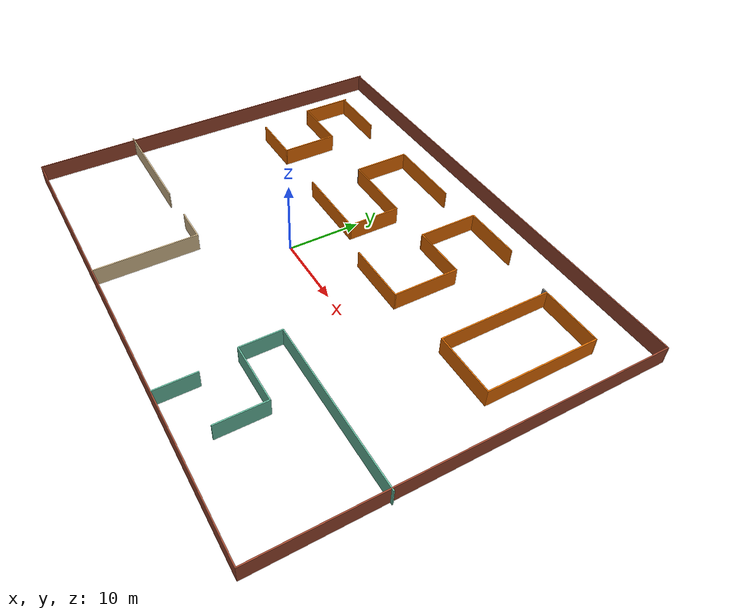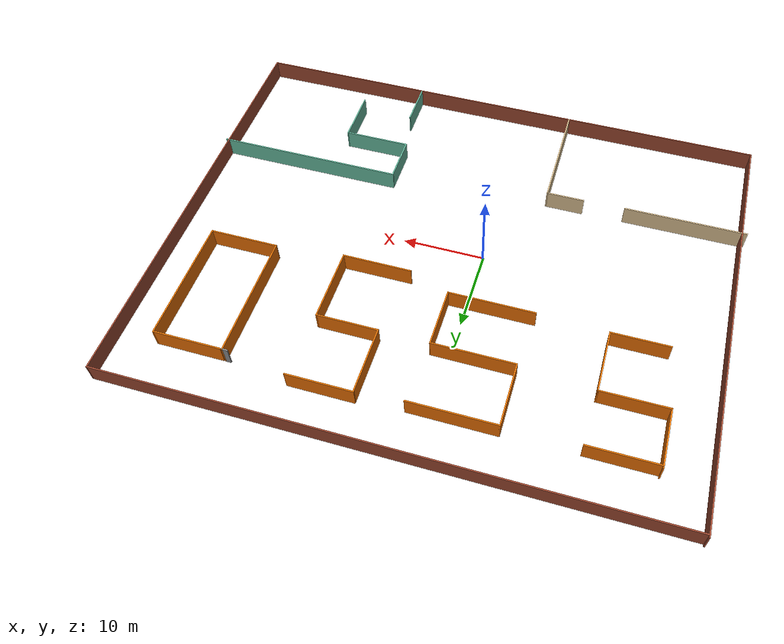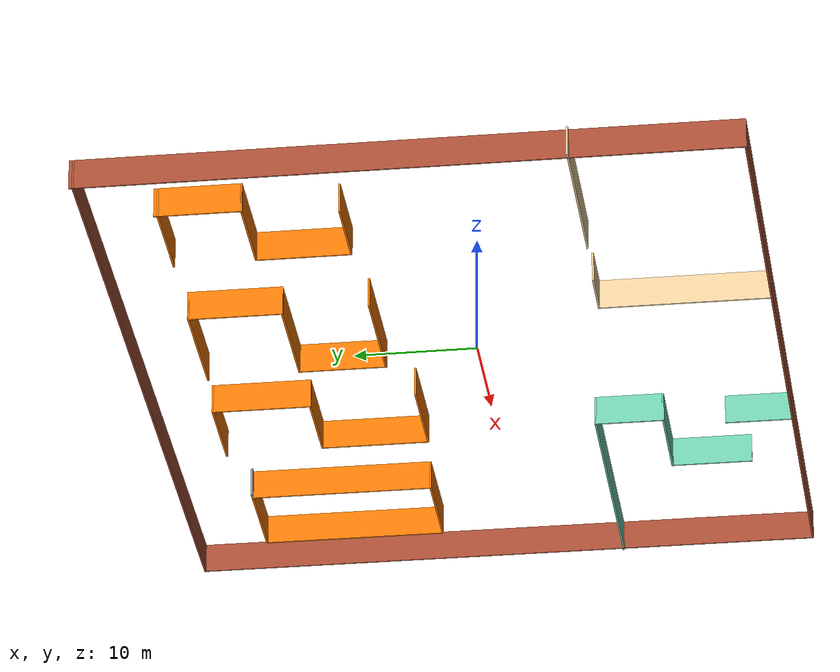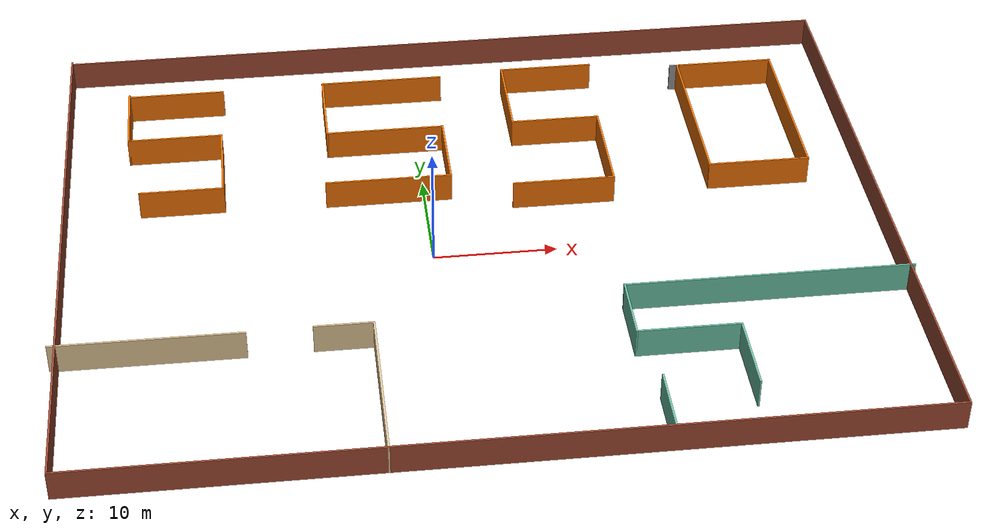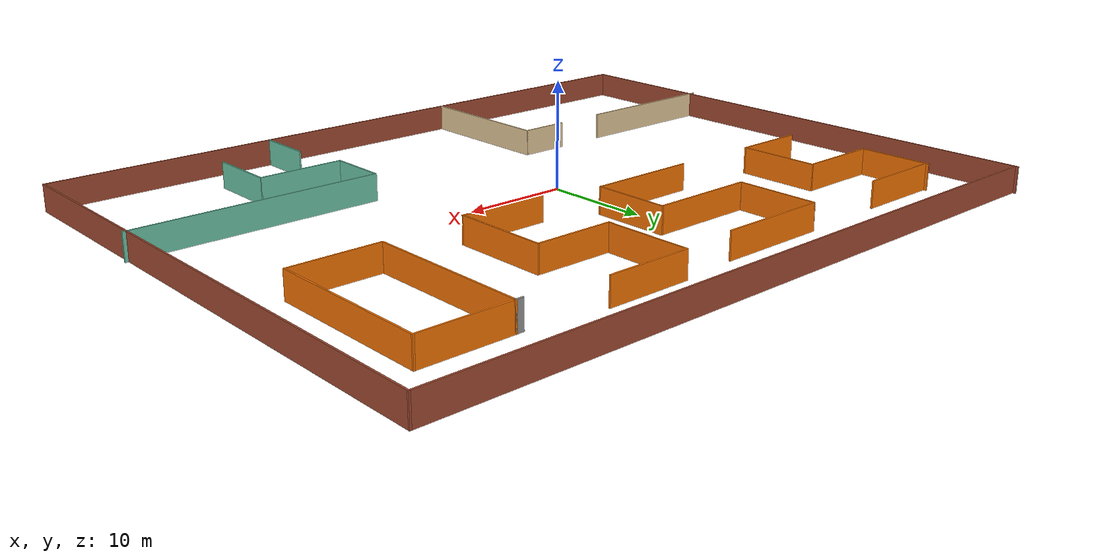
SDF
<?xml version='1.0'?>
<sdf version='1.7'>
  <model name='5550room1'>
    <pose>3.53861 1.95198 0 0 -0 0</pose>
    <link name='Wall_10'>
      <collision name='Wall_10_Collision'>
        <geometry>
          <box>
            <size>8 0.15 2.5</size>
          </box>
        </geometry>
        <pose>0 0 1.25 0 -0 0</pose>
      </collision>
      <visual name='Wall_10_Visual'>
        <pose>0 0 1.25 0 -0 0</pose>
        <geometry>
          <box>
            <size>8 0.15 2.5</size>
          </box>
        </geometry>
        <material>
          <script>
            <uri>file://media/materials/scripts/gazebo.material</uri>
            <name>Gazebo/Grey</name>
          </script>
          <ambient>0.996078 0.47451 0.0196078 1</ambient>
        </material>
        <meta>
          <layer>0</layer>
        </meta>
      </visual>
      <pose>-24.1054 13.6175 0 0 -0 0</pose>
    </link>
    <link name='Wall_11'>
      <collision name='Wall_11_Collision'>
        <geometry>
          <box>
            <size>7.75 0.15 2.5</size>
          </box>
        </geometry>
        <pose>0 0 1.25 0 -0 0</pose>
      </collision>
      <visual name='Wall_11_Visual'>
        <pose>0 0 1.25 0 -0 0</pose>
        <geometry>
          <box>
            <size>7.75 0.15 2.5</size>
          </box>
        </geometry>
        <material>
          <script>
            <uri>file://media/materials/scripts/gazebo.material</uri>
            <name>Gazebo/Grey</name>
          </script>
          <ambient>0.996078 0.47451 0.0196078 1</ambient>
        </material>
        <meta>
          <layer>0</layer>
        </meta>
      </visual>
      <pose>-20.1804 9.8175 0 0 -0 -1.5708</pose>
    </link>
    <link name='Wall_12'>
      <collision name='Wall_12_Collision'>
        <geometry>
          <box>
            <size>7 0.15 2.5</size>
          </box>
        </geometry>
        <pose>0 0 1.25 0 -0 0</pose>
      </collision>
      <visual name='Wall_12_Visual'>
        <pose>0 0 1.25 0 -0 0</pose>
        <geometry>
          <box>
            <size>7 0.15 2.5</size>
          </box>
        </geometry>
        <material>
          <script>
            <uri>file://media/materials/scripts/gazebo.material</uri>
            <name>Gazebo/Grey</name>
          </script>
          <ambient>0.996078 0.47451 0.0196078 1</ambient>
        </material>
        <meta>
          <layer>0</layer>
        </meta>
      </visual>
      <pose>-23.6054 6.0175 0 0 -0 3.14159</pose>
    </link>
    <link name='Wall_14'>
      <collision name='Wall_14_Collision'>
        <geometry>
          <box>
            <size>10.5 0.15 2.5</size>
          </box>
        </geometry>
        <pose>0 0 1.25 0 -0 0</pose>
      </collision>
      <visual name='Wall_14_Visual'>
        <pose>0 0 1.25 0 -0 0</pose>
        <geometry>
          <box>
            <size>10.5 0.15 2.5</size>
          </box>
        </geometry>
        <material>
          <script>
            <uri>file://media/materials/scripts/gazebo.material</uri>
            <name>Gazebo/Grey</name>
          </script>
          <ambient>0.996078 0.47451 0.0196078 1</ambient>
        </material>
        <meta>
          <layer>0</layer>
        </meta>
      </visual>
      <pose>-6.02478 20.4675 0 0 -0 0</pose>
    </link>
    <link name='Wall_17'>
      <collision name='Wall_17_Collision'>
        <geometry>
          <box>
            <size>7.75 0.15 2.5</size>
          </box>
        </geometry>
        <pose>0 0 1.25 0 -0 0</pose>
      </collision>
      <visual name='Wall_17_Visual'>
        <pose>0 0 1.25 0 -0 0</pose>
        <geometry>
          <box>
            <size>7.75 0.15 2.5</size>
          </box>
        </geometry>
        <material>
          <script>
            <uri>file://media/materials/scripts/gazebo.material</uri>
            <name>Gazebo/Grey</name>
          </script>
          <ambient>0.996078 0.47451 0.0196078 1</ambient>
        </material>
        <meta>
          <layer>0</layer>
        </meta>
      </visual>
      <pose>-11.1998 16.6675 0 0 -0 -1.5708</pose>
    </link>
    <link name='Wall_18'>
      <collision name='Wall_18_Collision'>
        <geometry>
          <box>
            <size>0.16 0.15 2.5</size>
          </box>
        </geometry>
        <pose>0 0 1.25 0 -0 0</pose>
      </collision>
      <visual name='Wall_18_Visual'>
        <pose>0 0 1.25 0 -0 0</pose>
        <geometry>
          <box>
            <size>0.16 0.15 2.5</size>
          </box>
        </geometry>
        <material>
          <script>
            <uri>file://media/materials/scripts/gazebo.material</uri>
            <name>Gazebo/Grey</name>
          </script>
          <ambient>1 1 1 1</ambient>
        </material>
        <meta>
          <layer>0</layer>
        </meta>
      </visual>
      <pose>-11.1948 12.8675 0 0 -0 0</pose>
    </link>
    <link name='Wall_19'>
      <collision name='Wall_19_Collision'>
        <geometry>
          <box>
            <size>10 0.15 2.5</size>
          </box>
        </geometry>
        <pose>0 0 1.25 0 -0 0</pose>
      </collision>
      <visual name='Wall_19_Visual'>
        <pose>0 0 1.25 0 -0 0</pose>
        <geometry>
          <box>
            <size>10 0.15 2.5</size>
          </box>
        </geometry>
        <material>
          <script>
            <uri>file://media/materials/scripts/gazebo.material</uri>
            <name>Gazebo/Grey</name>
          </script>
          <ambient>0.996078 0.47451 0.0196078 1</ambient>
        </material>
        <meta>
          <layer>0</layer>
        </meta>
      </visual>
      <pose>-6.26478 12.8675 0 0 -0 0</pose>
    </link>
    <link name='Wall_2'>
      <collision name='Wall_2_Collision'>
        <geometry>
          <box>
            <size>52.75 0.15 2.5</size>
          </box>
        </geometry>
        <pose>0 0 1.25 0 -0 0</pose>
      </collision>
      <visual name='Wall_2_Visual'>
        <pose>0 0 1.25 0 -0 0</pose>
        <geometry>
          <box>
            <size>52.75 0.15 2.5</size>
          </box>
        </geometry>
        <material>
          <script>
            <uri>file://media/materials/scripts/gazebo.material</uri>
            <name>Gazebo/Bricks</name>
          </script>
          <ambient>1 1 1 1</ambient>
        </material>
        <meta>
          <layer>0</layer>
        </meta>
      </visual>
      <pose>-33.1775 0.001208 0 0 -0 -1.5708</pose>
    </link>
    <link name='Wall_20'>
      <collision name='Wall_20_Collision'>
        <geometry>
          <box>
            <size>7.25 0.15 2.5</size>
          </box>
        </geometry>
        <pose>0 0 1.25 0 -0 0</pose>
      </collision>
      <visual name='Wall_20_Visual'>
        <pose>0 0 1.25 0 -0 0</pose>
        <geometry>
          <box>
            <size>7.25 0.15 2.5</size>
          </box>
        </geometry>
        <material>
          <script>
            <uri>file://media/materials/scripts/gazebo.material</uri>
            <name>Gazebo/Grey</name>
          </script>
          <ambient>0.996078 0.47451 0.0196078 1</ambient>
        </material>
        <meta>
          <layer>0</layer>
        </meta>
      </visual>
      <pose>-1.33978 9.3175 0 0 -0 -1.5708</pose>
    </link>
    <link name='Wall_21'>
      <collision name='Wall_21_Collision'>
        <geometry>
          <box>
            <size>10.5 0.15 2.5</size>
          </box>
        </geometry>
        <pose>0 0 1.25 0 -0 0</pose>
      </collision>
      <visual name='Wall_21_Visual'>
        <pose>0 0 1.25 0 -0 0</pose>
        <geometry>
          <box>
            <size>10.5 0.15 2.5</size>
          </box>
        </geometry>
        <material>
          <script>
            <uri>file://media/materials/scripts/gazebo.material</uri>
            <name>Gazebo/Grey</name>
          </script>
          <ambient>0.996078 0.47451 0.0196078 1</ambient>
        </material>
        <meta>
          <layer>0</layer>
        </meta>
      </visual>
      <pose>-6.51478 5.7675 0 0 -0 3.14159</pose>
    </link>
    <link name='Wall_23'>
      <collision name='Wall_23_Collision'>
        <geometry>
          <box>
            <size>8 0.15 2.5</size>
          </box>
        </geometry>
        <pose>0 0 1.25 0 -0 0</pose>
      </collision>
      <visual name='Wall_23_Visual'>
        <pose>0 0 1.25 0 -0 0</pose>
        <geometry>
          <box>
            <size>8 0.15 2.5</size>
          </box>
        </geometry>
        <material>
          <script>
            <uri>file://media/materials/scripts/gazebo.material</uri>
            <name>Gazebo/Grey</name>
          </script>
          <ambient>0.996078 0.47451 0.0196078 1</ambient>
        </material>
        <meta>
          <layer>0</layer>
        </meta>
      </visual>
      <pose>8.63609 20.9625 0 0 -0 3.14159</pose>
    </link>
    <link name='Wall_24'>
      <collision name='Wall_24_Collision'>
        <geometry>
          <box>
            <size>8.25 0.15 2.5</size>
          </box>
        </geometry>
        <pose>0 0 1.25 0 -0 0</pose>
      </collision>
      <visual name='Wall_24_Visual'>
        <pose>0 0 1.25 0 -0 0</pose>
        <geometry>
          <box>
            <size>8.25 0.15 2.5</size>
          </box>
        </geometry>
        <material>
          <script>
            <uri>file://media/materials/scripts/gazebo.material</uri>
            <name>Gazebo/Grey</name>
          </script>
          <ambient>0.996078 0.47451 0.0196078 1</ambient>
        </material>
        <meta>
          <layer>0</layer>
        </meta>
      </visual>
      <pose>4.71109 16.9125 0 0 -0 -1.5708</pose>
    </link>
    <link name='Wall_25'>
      <collision name='Wall_25_Collision'>
        <geometry>
          <box>
            <size>7.5 0.15 2.5</size>
          </box>
        </geometry>
        <pose>0 0 1.25 0 -0 0</pose>
      </collision>
      <visual name='Wall_25_Visual'>
        <pose>0 0 1.25 0 -0 0</pose>
        <geometry>
          <box>
            <size>7.5 0.15 2.5</size>
          </box>
        </geometry>
        <material>
          <script>
            <uri>file://media/materials/scripts/gazebo.material</uri>
            <name>Gazebo/Grey</name>
          </script>
          <ambient>0.996078 0.47451 0.0196078 1</ambient>
        </material>
        <meta>
          <layer>0</layer>
        </meta>
      </visual>
      <pose>8.38609 12.8625 0 0 -0 0</pose>
    </link>
    <link name='Wall_26'>
      <collision name='Wall_26_Collision'>
        <geometry>
          <box>
            <size>9 0.15 2.5</size>
          </box>
        </geometry>
        <pose>0 0 1.25 0 -0 0</pose>
      </collision>
      <visual name='Wall_26_Visual'>
        <pose>0 0 1.25 0 -0 0</pose>
        <geometry>
          <box>
            <size>9 0.15 2.5</size>
          </box>
        </geometry>
        <material>
          <script>
            <uri>file://media/materials/scripts/gazebo.material</uri>
            <name>Gazebo/Grey</name>
          </script>
          <ambient>0.996078 0.47451 0.0196078 1</ambient>
        </material>
        <meta>
          <layer>0</layer>
        </meta>
      </visual>
      <pose>12.0611 8.43752 0 0 -0 -1.5708</pose>
    </link>
    <link name='Wall_27'>
      <collision name='Wall_27_Collision'>
        <geometry>
          <box>
            <size>8.5 0.15 2.5</size>
          </box>
        </geometry>
        <pose>0 0 1.25 0 -0 0</pose>
      </collision>
      <visual name='Wall_27_Visual'>
        <pose>0 0 1.25 0 -0 0</pose>
        <geometry>
          <box>
            <size>8.5 0.15 2.5</size>
          </box>
        </geometry>
        <material>
          <script>
            <uri>file://media/materials/scripts/gazebo.material</uri>
            <name>Gazebo/Grey</name>
          </script>
          <ambient>0.996078 0.47451 0.0196078 1</ambient>
        </material>
        <meta>
          <layer>0</layer>
        </meta>
      </visual>
      <pose>7.88609 4.01252 0 0 -0 3.14159</pose>
    </link>
    <link name='Wall_29'>
      <collision name='Wall_29_Collision'>
        <geometry>
          <box>
            <size>0.75 0.15 2.5</size>
          </box>
        </geometry>
        <pose>0 0 1.25 0 -0 0</pose>
      </collision>
      <visual name='Wall_29_Visual'>
        <pose>0 0 1.25 0 -0 0</pose>
        <geometry>
          <box>
            <size>0.75 0.15 2.5</size>
          </box>
        </geometry>
        <material>
          <script>
            <uri>file://media/materials/scripts/gazebo.material</uri>
            <name>Gazebo/Grey</name>
          </script>
          <ambient>1 1 1 1</ambient>
        </material>
        <meta>
          <layer>0</layer>
        </meta>
      </visual>
      <pose>20.0388 19.9725 0 0 -0 0</pose>
    </link>
    <link name='Wall_3'>
      <collision name='Wall_3_Collision'>
        <geometry>
          <box>
            <size>66.75 0.15 2.5</size>
          </box>
        </geometry>
        <pose>0 0 1.25 0 -0 0</pose>
      </collision>
      <visual name='Wall_3_Visual'>
        <pose>0 0 1.25 0 -0 0</pose>
        <geometry>
          <box>
            <size>66.75 0.15 2.5</size>
          </box>
        </geometry>
        <material>
          <script>
            <uri>file://media/materials/scripts/gazebo.material</uri>
            <name>Gazebo/Bricks</name>
          </script>
          <ambient>1 1 1 1</ambient>
        </material>
        <meta>
          <layer>0</layer>
        </meta>
      </visual>
      <pose>0.122472 -26.2988 0 0 -0 0</pose>
    </link>
    <link name='Wall_30'>
      <collision name='Wall_30_Collision'>
        <geometry>
          <box>
            <size>15.25 0.15 2.5</size>
          </box>
        </geometry>
        <pose>0 0 1.25 0 -0 0</pose>
      </collision>
      <visual name='Wall_30_Visual'>
        <pose>0 0 1.25 0 -0 0</pose>
        <geometry>
          <box>
            <size>15.25 0.15 2.5</size>
          </box>
        </geometry>
        <material>
          <script>
            <uri>file://media/materials/scripts/gazebo.material</uri>
            <name>Gazebo/Grey</name>
          </script>
          <ambient>0.996078 0.47451 0.0196078 1</ambient>
        </material>
        <meta>
          <layer>0</layer>
        </meta>
      </visual>
      <pose>20.3389 12.4225 0 0 -0 -1.5708</pose>
    </link>
    <link name='Wall_31'>
      <collision name='Wall_31_Collision'>
        <geometry>
          <box>
            <size>8.5 0.15 2.5</size>
          </box>
        </geometry>
        <pose>0 0 1.25 0 -0 0</pose>
      </collision>
      <visual name='Wall_31_Visual'>
        <pose>0 0 1.25 0 -0 0</pose>
        <geometry>
          <box>
            <size>8.5 0.15 2.5</size>
          </box>
        </geometry>
        <material>
          <script>
            <uri>file://media/materials/scripts/gazebo.material</uri>
            <name>Gazebo/Grey</name>
          </script>
          <ambient>0.996078 0.47451 0.0196078 1</ambient>
        </material>
        <meta>
          <layer>0</layer>
        </meta>
      </visual>
      <pose>24.5138 4.87248 0 0 -0 0</pose>
    </link>
    <link name='Wall_32'>
      <collision name='Wall_32_Collision'>
        <geometry>
          <box>
            <size>15.25 0.15 2.5</size>
          </box>
        </geometry>
        <pose>0 0 1.25 0 -0 0</pose>
      </collision>
      <visual name='Wall_32_Visual'>
        <pose>0 0 1.25 0 -0 0</pose>
        <geometry>
          <box>
            <size>15.25 0.15 2.5</size>
          </box>
        </geometry>
        <material>
          <script>
            <uri>file://media/materials/scripts/gazebo.material</uri>
            <name>Gazebo/Grey</name>
          </script>
          <ambient>0.996078 0.47451 0.0196078 1</ambient>
        </material>
        <meta>
          <layer>0</layer>
        </meta>
      </visual>
      <pose>28.6888 12.4225 0 0 -0 1.5708</pose>
    </link>
    <link name='Wall_33'>
      <collision name='Wall_33_Collision'>
        <geometry>
          <box>
            <size>8.25 0.15 2.5</size>
          </box>
        </geometry>
        <pose>0 0 1.25 0 -0 0</pose>
      </collision>
      <visual name='Wall_33_Visual'>
        <pose>0 0 1.25 0 -0 0</pose>
        <geometry>
          <box>
            <size>8.25 0.15 2.5</size>
          </box>
        </geometry>
        <material>
          <script>
            <uri>file://media/materials/scripts/gazebo.material</uri>
            <name>Gazebo/Grey</name>
          </script>
          <ambient>0.996078 0.47451 0.0196078 1</ambient>
        </material>
        <meta>
          <layer>0</layer>
        </meta>
      </visual>
      <pose>24.6388 19.9725 0 0 -0 3.14159</pose>
    </link>
    <link name='Wall_35'>
      <collision name='Wall_35_Collision'>
        <geometry>
          <box>
            <size>15 0.15 2.5</size>
          </box>
        </geometry>
        <pose>0 0 1.25 0 -0 0</pose>
      </collision>
      <visual name='Wall_35_Visual'>
        <pose>0 0 1.25 0 -0 0</pose>
        <geometry>
          <box>
            <size>15 0.15 2.5</size>
          </box>
        </geometry>
        <material>
          <script>
            <uri>file://media/materials/scripts/gazebo.material</uri>
            <name>Gazebo/Grey</name>
          </script>
          <ambient>0.921569 0.807843 0.615686 1</ambient>
        </material>
        <meta>
          <layer>0</layer>
        </meta>
      </visual>
      <pose>-26.2981 -12.575 0 0 -0 0</pose>
    </link>
    <link name='Wall_37'>
      <collision name='Wall_37_Collision'>
        <geometry>
          <box>
            <size>4.75 0.15 2.5</size>
          </box>
        </geometry>
        <pose>0 0 1.25 0 -0 0</pose>
      </collision>
      <visual name='Wall_37_Visual'>
        <pose>0 0 1.25 0 -0 0</pose>
        <geometry>
          <box>
            <size>4.75 0.15 2.5</size>
          </box>
        </geometry>
        <material>
          <script>
            <uri>file://media/materials/scripts/gazebo.material</uri>
            <name>Gazebo/Grey</name>
          </script>
          <ambient>0.921569 0.807843 0.615686 1</ambient>
        </material>
        <meta>
          <layer>0</layer>
        </meta>
      </visual>
      <pose>-11.3749 -12.4512 0 0 -0 0</pose>
    </link>
    <link name='Wall_38'>
      <collision name='Wall_38_Collision'>
        <geometry>
          <box>
            <size>14 0.15 2.5</size>
          </box>
        </geometry>
        <pose>0 0 1.25 0 -0 0</pose>
      </collision>
      <visual name='Wall_38_Visual'>
        <pose>0 0 1.25 0 -0 0</pose>
        <geometry>
          <box>
            <size>14 0.15 2.5</size>
          </box>
        </geometry>
        <material>
          <script>
            <uri>file://media/materials/scripts/gazebo.material</uri>
            <name>Gazebo/Grey</name>
          </script>
          <ambient>0.921569 0.807843 0.615686 1</ambient>
        </material>
        <meta>
          <layer>0</layer>
        </meta>
      </visual>
      <pose>-9.07488 -19.3762 0 0 -0 -1.5708</pose>
    </link>
    <link name='Wall_4'>
      <collision name='Wall_4_Collision'>
        <geometry>
          <box>
            <size>52.5 0.15 2.5</size>
          </box>
        </geometry>
        <pose>0 0 1.25 0 -0 0</pose>
      </collision>
      <visual name='Wall_4_Visual'>
        <pose>0 0 1.25 0 -0 0</pose>
        <geometry>
          <box>
            <size>52.5 0.15 2.5</size>
          </box>
        </geometry>
        <material>
          <script>
            <uri>file://media/materials/scripts/gazebo.material</uri>
            <name>Gazebo/Bricks</name>
          </script>
          <ambient>1 1 1 1</ambient>
        </material>
        <meta>
          <layer>0</layer>
        </meta>
      </visual>
      <pose>33.4225 -0.123792 0 0 -0 1.5708</pose>
    </link>
    <link name='Wall_40'>
      <collision name='Wall_40_Collision'>
        <geometry>
          <box>
            <size>5.5 0.15 2.5</size>
          </box>
        </geometry>
        <pose>0 0 1.25 0 -0 0</pose>
      </collision>
      <visual name='Wall_40_Visual'>
        <pose>0 0 1.25 0 -0 0</pose>
        <geometry>
          <box>
            <size>5.5 0.15 2.5</size>
          </box>
        </geometry>
        <material>
          <script>
            <uri>file://media/materials/scripts/gazebo.material</uri>
            <name>Gazebo/Grey</name>
          </script>
          <ambient>0.435294 0.796078 0.67451 1</ambient>
        </material>
        <meta>
          <layer>0</layer>
        </meta>
      </visual>
      <pose>11.6948 -23.513 0 0 -0 1.5708</pose>
    </link>
    <link name='Wall_42'>
      <collision name='Wall_42_Collision'>
        <geometry>
          <box>
            <size>23.25 0.15 2.5</size>
          </box>
        </geometry>
        <pose>0 0 1.25 0 -0 0</pose>
      </collision>
      <visual name='Wall_42_Visual'>
        <pose>0 0 1.25 0 -0 0</pose>
        <geometry>
          <box>
            <size>23.25 0.15 2.5</size>
          </box>
        </geometry>
        <material>
          <script>
            <uri>file://media/materials/scripts/gazebo.material</uri>
            <name>Gazebo/Grey</name>
          </script>
          <ambient>0.435294 0.796078 0.67451 1</ambient>
        </material>
        <meta>
          <layer>0</layer>
        </meta>
      </visual>
      <pose>22.1731 -10.0999 0 0 -0 3.14159</pose>
    </link>
    <link name='Wall_43'>
      <collision name='Wall_43_Collision'>
        <geometry>
          <box>
            <size>5.75 0.15 2.5</size>
          </box>
        </geometry>
        <pose>0 0 1.25 0 -0 0</pose>
      </collision>
      <visual name='Wall_43_Visual'>
        <pose>0 0 1.25 0 -0 0</pose>
        <geometry>
          <box>
            <size>5.75 0.15 2.5</size>
          </box>
        </geometry>
        <material>
          <script>
            <uri>file://media/materials/scripts/gazebo.material</uri>
            <name>Gazebo/Grey</name>
          </script>
          <ambient>0.435294 0.796078 0.67451 1</ambient>
        </material>
        <meta>
          <layer>0</layer>
        </meta>
      </visual>
      <pose>10.6231 -12.8999 0 0 -0 -1.5708</pose>
    </link>
    <link name='Wall_44'>
      <collision name='Wall_44_Collision'>
        <geometry>
          <box>
            <size>8.25 0.15 2.5</size>
          </box>
        </geometry>
        <pose>0 0 1.25 0 -0 0</pose>
      </collision>
      <visual name='Wall_44_Visual'>
        <pose>0 0 1.25 0 -0 0</pose>
        <geometry>
          <box>
            <size>8.25 0.15 2.5</size>
          </box>
        </geometry>
        <material>
          <script>
            <uri>file://media/materials/scripts/gazebo.material</uri>
            <name>Gazebo/Grey</name>
          </script>
          <ambient>0.435294 0.796078 0.67451 1</ambient>
        </material>
        <meta>
          <layer>0</layer>
        </meta>
      </visual>
      <pose>14.6731 -15.6999 0 0 -0 0</pose>
    </link>
    <link name='Wall_45'>
      <collision name='Wall_45_Collision'>
        <geometry>
          <box>
            <size>6.75 0.15 2.5</size>
          </box>
        </geometry>
        <pose>0 0 1.25 0 -0 0</pose>
      </collision>
      <visual name='Wall_45_Visual'>
        <pose>0 0 1.25 0 -0 0</pose>
        <geometry>
          <box>
            <size>6.75 0.15 2.5</size>
          </box>
        </geometry>
        <material>
          <script>
            <uri>file://media/materials/scripts/gazebo.material</uri>
            <name>Gazebo/Grey</name>
          </script>
          <ambient>0.435294 0.796078 0.67451 1</ambient>
        </material>
        <meta>
          <layer>0</layer>
        </meta>
      </visual>
      <pose>18.7231 -18.9999 0 0 -0 -1.5708</pose>
    </link>
    <link name='Wall_5'>
      <collision name='Wall_5_Collision'>
        <geometry>
          <box>
            <size>66.75 0.15 2.5</size>
          </box>
        </geometry>
        <pose>0 0 1.25 0 -0 0</pose>
      </collision>
      <visual name='Wall_5_Visual'>
        <pose>0 0 1.25 0 -0 0</pose>
        <geometry>
          <box>
            <size>66.75 0.15 2.5</size>
          </box>
        </geometry>
        <material>
          <script>
            <uri>file://media/materials/scripts/gazebo.material</uri>
            <name>Gazebo/Bricks</name>
          </script>
          <ambient>1 1 1 1</ambient>
        </material>
        <meta>
          <layer>0</layer>
        </meta>
      </visual>
      <pose>0.122472 26.0512 0 0 -0 3.14159</pose>
    </link>
    <link name='Wall_7'>
      <collision name='Wall_7_Collision'>
        <geometry>
          <box>
            <size>8.25 0.15 2.5</size>
          </box>
        </geometry>
        <pose>0 0 1.25 0 -0 0</pose>
      </collision>
      <visual name='Wall_7_Visual'>
        <pose>0 0 1.25 0 -0 0</pose>
        <geometry>
          <box>
            <size>8.25 0.15 2.5</size>
          </box>
        </geometry>
        <material>
          <script>
            <uri>file://media/materials/scripts/gazebo.material</uri>
            <name>Gazebo/Grey</name>
          </script>
          <ambient>0.996078 0.47451 0.0196078 1</ambient>
        </material>
        <meta>
          <layer>0</layer>
        </meta>
      </visual>
      <pose>-23.9804 20.22 0 0 -0 0</pose>
    </link>
    <link name='Wall_9'>
      <collision name='Wall_9_Collision'>
        <geometry>
          <box>
            <size>7 0.15 2.5</size>
          </box>
        </geometry>
        <pose>0 0 1.25 0 -0 0</pose>
      </collision>
      <visual name='Wall_9_Visual'>
        <pose>0 0 1.25 0 -0 0</pose>
        <geometry>
          <box>
            <size>7 0.15 2.5</size>
          </box>
        </geometry>
        <material>
          <script>
            <uri>file://media/materials/scripts/gazebo.material</uri>
            <name>Gazebo/Grey</name>
          </script>
          <ambient>0.996078 0.47451 0.0196078 1</ambient>
        </material>
        <meta>
          <layer>0</layer>
        </meta>
      </visual>
      <pose>-28.0304 17.0425 0 0 -0 -1.5708</pose>
    </link>
    <static>1</static>
  </model>
</sdf>
